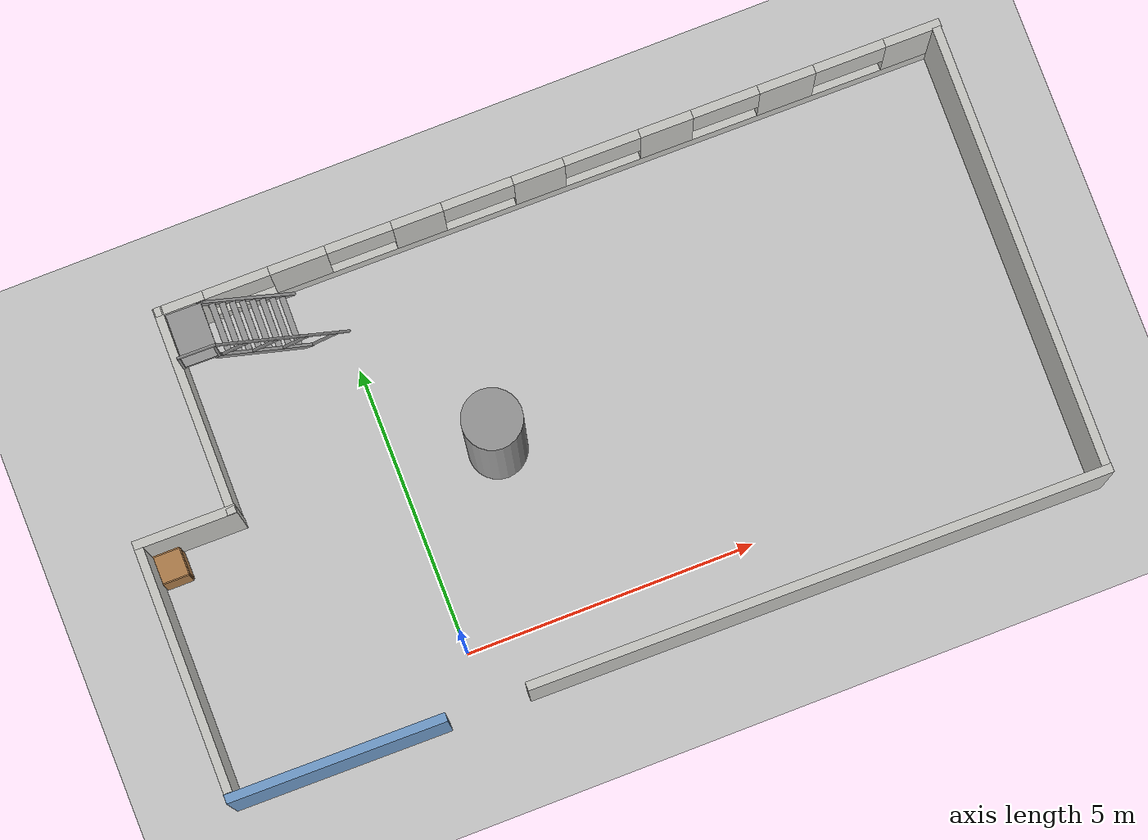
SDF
<sdf version="1.7">
 <world name="default">
  <model name="ground_plane">
   <static>1</static>
   <link name="link">
    <collision name="collision">
     <geometry><plane><normal>0 0 1</normal><size>100 100</size></plane></geometry>
     <surface><friction><ode><mu>100</mu><mu2>50</mu2></ode></friction></surface>
    </collision>
    <visual name="visual">
     <cast_shadows>0</cast_shadows>
     <geometry><plane><normal>0 0 1</normal><size>100 100</size></plane></geometry>
     <material>
      <script><uri>file://media/materials/scripts/gazebo.material</uri><name>Gazebo/Grey</name></script>
     </material>
    </visual>
   </link>
  </model>
  <model name="leju_exhibition">
   <link name="Wall_11">
    <pose>-5.68 -2.4925 0 0 -0 0</pose>
    <visual name="Wall_11_Visual">
     <pose>0 0 1.25 0 -0 0</pose>
     <geometry><box><size>3.75 0.15 2.5</size></box></geometry>
     <material>
      <script><uri>file://media/materials/scripts/gazebo.material</uri><name>Gazebo/Grey</name></script>
      <ambient>0.447059 0.623529 0.811765 1</ambient>
      <shader type="pixel"/>
     </material>
     <meta><layer>0</layer></meta>
    </visual>
    <collision name="Wall_11_Collision">
     <pose>0 0 1.25 0 -0 0</pose>
     <geometry><box><size>3.75 0.15 2.5</size></box></geometry>
     <surface>
      <friction>
       <ode><mu>1</mu><mu2>1</mu2><fdir1>0 0 0</fdir1><slip1>0</slip1><slip2>0</slip2></ode>
       <torsional>
        <coefficient>1</coefficient>
        <patch_radius>0</patch_radius>
        <surface_radius>0</surface_radius>
        <use_patch_radius>1</use_patch_radius>
        <ode><slip>0</slip></ode>
       </torsional>
      </friction>
      <bounce><restitution_coefficient>0</restitution_coefficient><threshold>1e+06</threshold></bounce>
      <contact>
       <collide_without_contact>0</collide_without_contact>
       <collide_without_contact_bitmask>1</collide_without_contact_bitmask>
       <collide_bitmask>1</collide_bitmask>
       <ode>
        <soft_cfm>0</soft_cfm>
        <soft_erp>0.2</soft_erp>
        <kp>1e+13</kp>
        <kd>1</kd>
        <max_vel>0.01</max_vel>
        <min_depth>0</min_depth>
       </ode>
       <bullet>
        <split_impulse>1</split_impulse>
        <split_impulse_penetration_threshold>-0.01</split_impulse_penetration_threshold>
        <soft_cfm>0</soft_cfm>
        <soft_erp>0.2</soft_erp>
        <kp>1e+13</kp>
        <kd>1</kd>
       </bullet>
      </contact>
     </surface>
    </collision>
   </link>
   <link name="Wall_13">
    <pose>-7.47239 -0.332597 0 0 -0 1.57079</pose>
    <inertial>
     <inertia><ixx>0</ixx><ixy>0</ixy><ixz>0</ixz><iyy>0</iyy><iyz>0</iyz><izz>0</izz></inertia>
     <mass>0</mass>
    </inertial>
    <visual name="Wall_13_Visual">
     <pose>0 0 1.25 0 -0 0</pose>
     <geometry><box><size>4.15511 0.15 2.5</size></box></geometry>
     <material>
      <script><uri>file://media/materials/scripts/gazebo.material</uri><name>Gazebo/CeilingTiled</name></script>
      <ambient>0.447059 0.623529 0.811765 1</ambient>
      <shader type="pixel"/>
     </material>
     <meta><layer>0</layer></meta>
    </visual>
    <collision name="Wall_13_Collision">
     <pose>0 0 1.25 0 -0 0</pose>
     <geometry><box><size>4.15511 0.15 2.5</size></box></geometry>
     <surface>
      <friction>
       <ode><mu>1</mu><mu2>1</mu2><fdir1>0 0 0</fdir1><slip1>0</slip1><slip2>0</slip2></ode>
       <torsional>
        <coefficient>1</coefficient>
        <patch_radius>0</patch_radius>
        <surface_radius>0</surface_radius>
        <use_patch_radius>1</use_patch_radius>
        <ode><slip>0</slip></ode>
       </torsional>
      </friction>
      <bounce><restitution_coefficient>0</restitution_coefficient><threshold>1e+06</threshold></bounce>
      <contact>
       <collide_without_contact>0</collide_without_contact>
       <collide_without_contact_bitmask>1</collide_without_contact_bitmask>
       <collide_bitmask>1</collide_bitmask>
       <ode>
        <soft_cfm>0</soft_cfm>
        <soft_erp>0.2</soft_erp>
        <kp>1e+13</kp>
        <kd>1</kd>
        <max_vel>0.01</max_vel>
        <min_depth>0</min_depth>
       </ode>
       <bullet>
        <split_impulse>1</split_impulse>
        <split_impulse_penetration_threshold>-0.01</split_impulse_penetration_threshold>
        <soft_cfm>0</soft_cfm>
        <soft_erp>0.2</soft_erp>
        <kp>1e+13</kp>
        <kd>1</kd>
       </bullet>
      </contact>
     </surface>
    </collision>
   </link>
   <link name="Wall_14">
    <pose>-6.67163 1.81563 0 0 -0 0</pose>
    <visual name="Wall_14_Visual">
     <pose>0 0 1.25 0 -0 0</pose>
     <geometry><box><size>1.75 0.15 2.5</size></box></geometry>
     <material>
      <script><uri>file://media/materials/scripts/gazebo.material</uri><name>Gazebo/CeilingTiled</name></script>
      <ambient>0.447059 0.623529 0.811765 1</ambient>
      <shader type="pixel"/>
     </material>
     <meta><layer>0</layer></meta>
    </visual>
    <collision name="Wall_14_Collision">
     <pose>0 0 1.25 0 -0 0</pose>
     <geometry><box><size>1.75 0.15 2.5</size></box></geometry>
     <surface>
      <friction>
       <ode><mu>1</mu><mu2>1</mu2><fdir1>0 0 0</fdir1><slip1>0</slip1><slip2>0</slip2></ode>
       <torsional>
        <coefficient>1</coefficient>
        <patch_radius>0</patch_radius>
        <surface_radius>0</surface_radius>
        <use_patch_radius>1</use_patch_radius>
        <ode><slip>0</slip></ode>
       </torsional>
      </friction>
      <bounce><restitution_coefficient>0</restitution_coefficient><threshold>1e+06</threshold></bounce>
      <contact>
       <collide_without_contact>0</collide_without_contact>
       <collide_without_contact_bitmask>1</collide_without_contact_bitmask>
       <collide_bitmask>1</collide_bitmask>
       <ode>
        <soft_cfm>0</soft_cfm>
        <soft_erp>0.2</soft_erp>
        <kp>1e+13</kp>
        <kd>1</kd>
        <max_vel>0.01</max_vel>
        <min_depth>0</min_depth>
       </ode>
       <bullet>
        <split_impulse>1</split_impulse>
        <split_impulse_penetration_threshold>-0.01</split_impulse_penetration_threshold>
        <soft_cfm>0</soft_cfm>
        <soft_erp>0.2</soft_erp>
        <kp>1e+13</kp>
        <kd>1</kd>
       </bullet>
      </contact>
     </surface>
    </collision>
   </link>
   <link name="Wall_15">
    <pose>-5.8821 3.52008 0 0 -0 1.57079</pose>
    <inertial>
     <inertia><ixx>0</ixx><ixy>0</ixy><ixz>0</ixz><iyy>0</iyy><iyz>0</iyz><izz>0</izz></inertia>
     <mass>0</mass>
    </inertial>
    <visual name="Wall_15_Visual">
     <pose>0 0 1.25 0 -0 0</pose>
     <geometry><box><size>3.54196 0.15 2.5</size></box></geometry>
     <material>
      <script><uri>file://media/materials/scripts/gazebo.material</uri><name>Gazebo/CeilingTiled</name></script>
      <ambient>0.447059 0.623529 0.811765 1</ambient>
      <shader type="pixel"/>
     </material>
     <meta><layer>0</layer></meta>
    </visual>
    <collision name="Wall_15_Collision">
     <pose>0 0 1.25 0 -0 0</pose>
     <geometry><box><size>3.54196 0.15 2.5</size></box></geometry>
     <surface>
      <friction>
       <ode><mu>1</mu><mu2>1</mu2><fdir1>0 0 0</fdir1><slip1>0</slip1><slip2>0</slip2></ode>
       <torsional>
        <coefficient>1</coefficient>
        <patch_radius>0</patch_radius>
        <surface_radius>0</surface_radius>
        <use_patch_radius>1</use_patch_radius>
        <ode><slip>0</slip></ode>
       </torsional>
      </friction>
      <bounce><restitution_coefficient>0</restitution_coefficient><threshold>1e+06</threshold></bounce>
      <contact>
       <collide_without_contact>0</collide_without_contact>
       <collide_without_contact_bitmask>1</collide_without_contact_bitmask>
       <collide_bitmask>1</collide_bitmask>
       <ode>
        <soft_cfm>0</soft_cfm>
        <soft_erp>0.2</soft_erp>
        <kp>1e+13</kp>
        <kd>1</kd>
        <max_vel>0.01</max_vel>
        <min_depth>0</min_depth>
       </ode>
       <bullet>
        <split_impulse>1</split_impulse>
        <split_impulse_penetration_threshold>-0.01</split_impulse_penetration_threshold>
        <soft_cfm>0</soft_cfm>
        <soft_erp>0.2</soft_erp>
        <kp>1e+13</kp>
        <kd>1</kd>
       </bullet>
      </contact>
     </surface>
    </collision>
   </link>
   <link name="Wall_16">
    <pose>0.808087 5.22568 0 0 -0 0</pose>
    <visual name="Wall_16_Visual_0">
     <pose>-6.33395 0 1.25 0 -0 0</pose>
     <geometry><box><size>0.8321 0.15 2.5</size></box></geometry>
     <material>
      <script><uri>file://media/materials/scripts/gazebo.material</uri><name>Gazebo/CeilingTiled</name></script>
      <ambient>0.447059 0.623529 0.811765 1</ambient>
      <shader type="pixel"/>
     </material>
     <meta><layer>0</layer></meta>
    </visual>
    <visual name="Wall_16_Visual_1">
     <pose>0.41605 0 0.25 0 -0 0</pose>
     <geometry><box><size>12.6679 0.15 0.5</size></box></geometry>
     <material>
      <script><uri>file://media/materials/scripts/gazebo.material</uri><name>Gazebo/CeilingTiled</name></script>
      <ambient>0.447059 0.623529 0.811765 1</ambient>
      <shader type="pixel"/>
     </material>
     <meta><layer>0</layer></meta>
    </visual>
    <visual name="Wall_16_Visual_2">
     <pose>-4.31442 0 1.5 0 -0 0</pose>
     <geometry><box><size>0.97215 0.15 2</size></box></geometry>
     <material>
      <script><uri>file://media/materials/scripts/gazebo.material</uri><name>Gazebo/CeilingTiled</name></script>
      <ambient>0.447059 0.623529 0.811765 1</ambient>
      <shader type="pixel"/>
     </material>
     <meta><layer>0</layer></meta>
    </visual>
    <visual name="Wall_16_Visual_3">
     <pose>-2.26455 0 1.5 0 -0 0</pose>
     <geometry><box><size>0.86635 0.15 2</size></box></geometry>
     <material>
      <script><uri>file://media/materials/scripts/gazebo.material</uri><name>Gazebo/CeilingTiled</name></script>
      <ambient>0.447059 0.623529 0.811765 1</ambient>
      <shader type="pixel"/>
     </material>
     <meta><layer>0</layer></meta>
    </visual>
    <visual name="Wall_16_Visual_4">
     <pose>-0.181613 0 1.5 0 -0 0</pose>
     <geometry><box><size>0.879575 0.15 2</size></box></geometry>
     <material>
      <script><uri>file://media/materials/scripts/gazebo.material</uri><name>Gazebo/CeilingTiled</name></script>
      <ambient>0.447059 0.623529 0.811765 1</ambient>
      <shader type="pixel"/>
     </material>
     <meta><layer>0</layer></meta>
    </visual>
    <visual name="Wall_16_Visual_5">
     <pose>2.01374 0 1.5 0 -0 0</pose>
     <geometry><box><size>0.906025 0.15 2</size></box></geometry>
     <material>
      <script><uri>file://media/materials/scripts/gazebo.material</uri><name>Gazebo/CeilingTiled</name></script>
      <ambient>0.447059 0.623529 0.811765 1</ambient>
      <shader type="pixel"/>
     </material>
     <meta><layer>0</layer></meta>
    </visual>
    <visual name="Wall_16_Visual_6">
     <pose>4.09337 0 1.5 0 -0 0</pose>
     <geometry><box><size>0.965538 0.15 2</size></box></geometry>
     <material>
      <script><uri>file://media/materials/scripts/gazebo.material</uri><name>Gazebo/CeilingTiled</name></script>
      <ambient>0.447059 0.623529 0.811765 1</ambient>
      <shader type="pixel"/>
     </material>
     <meta><layer>0</layer></meta>
    </visual>
    <visual name="Wall_16_Visual_7">
     <pose>6.26806 0 1.5 0 -0 0</pose>
     <geometry><box><size>0.963887 0.15 2</size></box></geometry>
     <material>
      <script><uri>file://media/materials/scripts/gazebo.material</uri><name>Gazebo/CeilingTiled</name></script>
      <ambient>0.447059 0.623529 0.811765 1</ambient>
      <shader type="pixel"/>
     </material>
     <meta><layer>0</layer></meta>
    </visual>
    <visual name="Wall_16_Visual_8">
     <pose>-5.3592 0 1.9 0 -0 0</pose>
     <geometry><box><size>1.1174 0.15 1.2</size></box></geometry>
     <material>
      <script><uri>file://media/materials/scripts/gazebo.material</uri><name>Gazebo/CeilingTiled</name></script>
      <ambient>0.447059 0.623529 0.811765 1</ambient>
      <shader type="pixel"/>
     </material>
     <meta><layer>0</layer></meta>
    </visual>
    <visual name="Wall_16_Visual_9">
     <pose>-3.26304 0 1.9 0 -0 0</pose>
     <geometry><box><size>1.13062 0.15 1.2</size></box></geometry>
     <material>
      <script><uri>file://media/materials/scripts/gazebo.material</uri><name>Gazebo/CeilingTiled</name></script>
      <ambient>0.447059 0.623529 0.811765 1</ambient>
      <shader type="pixel"/>
     </material>
     <meta><layer>0</layer></meta>
    </visual>
    <visual name="Wall_16_Visual_10">
     <pose>-1.22639 0 1.9 0 -0 0</pose>
     <geometry><box><size>1.20998 0.15 1.2</size></box></geometry>
     <material>
      <script><uri>file://media/materials/scripts/gazebo.material</uri><name>Gazebo/CeilingTiled</name></script>
      <ambient>0.447059 0.623529 0.811765 1</ambient>
      <shader type="pixel"/>
     </material>
     <meta><layer>0</layer></meta>
    </visual>
    <visual name="Wall_16_Visual_11">
     <pose>0.90945 0 1.9 0 -0 0</pose>
     <geometry><box><size>1.30255 0.15 1.2</size></box></geometry>
     <material>
      <script><uri>file://media/materials/scripts/gazebo.material</uri><name>Gazebo/CeilingTiled</name></script>
      <ambient>0.447059 0.623529 0.811765 1</ambient>
      <shader type="pixel"/>
     </material>
     <meta><layer>0</layer></meta>
    </visual>
    <visual name="Wall_16_Visual_12">
     <pose>3.03868 0 1.9 0 -0 0</pose>
     <geometry><box><size>1.14385 0.15 1.2</size></box></geometry>
     <material>
      <script><uri>file://media/materials/scripts/gazebo.material</uri><name>Gazebo/CeilingTiled</name></script>
      <ambient>0.447059 0.623529 0.811765 1</ambient>
      <shader type="pixel"/>
     </material>
     <meta><layer>0</layer></meta>
    </visual>
    <visual name="Wall_16_Visual_13">
     <pose>5.18112 0 1.9 0 -0 0</pose>
     <geometry><box><size>1.20998 0.15 1.2</size></box></geometry>
     <material>
      <script><uri>file://media/materials/scripts/gazebo.material</uri><name>Gazebo/CeilingTiled</name></script>
      <ambient>0.447059 0.623529 0.811765 1</ambient>
      <shader type="pixel"/>
     </material>
     <meta><layer>0</layer></meta>
    </visual>
    <collision name="Wall_16_Collision_0">
     <pose>-6.33395 0 1.25 0 -0 0</pose>
     <geometry><box><size>0.8321 0.15 2.5</size></box></geometry>
     <surface>
      <friction>
       <ode><mu>1</mu><mu2>1</mu2><fdir1>0 0 0</fdir1><slip1>0</slip1><slip2>0</slip2></ode>
       <torsional>
        <coefficient>1</coefficient>
        <patch_radius>0</patch_radius>
        <surface_radius>0</surface_radius>
        <use_patch_radius>1</use_patch_radius>
        <ode><slip>0</slip></ode>
       </torsional>
      </friction>
      <bounce><restitution_coefficient>0</restitution_coefficient><threshold>1e+06</threshold></bounce>
      <contact>
       <collide_without_contact>0</collide_without_contact>
       <collide_without_contact_bitmask>1</collide_without_contact_bitmask>
       <collide_bitmask>1</collide_bitmask>
       <ode>
        <soft_cfm>0</soft_cfm>
        <soft_erp>0.2</soft_erp>
        <kp>1e+13</kp>
        <kd>1</kd>
        <max_vel>0.01</max_vel>
        <min_depth>0</min_depth>
       </ode>
       <bullet>
        <split_impulse>1</split_impulse>
        <split_impulse_penetration_threshold>-0.01</split_impulse_penetration_threshold>
        <soft_cfm>0</soft_cfm>
        <soft_erp>0.2</soft_erp>
        <kp>1e+13</kp>
        <kd>1</kd>
       </bullet>
      </contact>
     </surface>
    </collision>
    <collision name="Wall_16_Collision_1">
     <pose>0.41605 0 0.25 0 -0 0</pose>
     <geometry><box><size>12.6679 0.15 0.5</size></box></geometry>
     <surface>
      <friction>
       <ode><mu>1</mu><mu2>1</mu2><fdir1>0 0 0</fdir1><slip1>0</slip1><slip2>0</slip2></ode>
       <torsional>
        <coefficient>1</coefficient>
        <patch_radius>0</patch_radius>
        <surface_radius>0</surface_radius>
        <use_patch_radius>1</use_patch_radius>
        <ode><slip>0</slip></ode>
       </torsional>
      </friction>
      <bounce><restitution_coefficient>0</restitution_coefficient><threshold>1e+06</threshold></bounce>
      <contact>
       <collide_without_contact>0</collide_without_contact>
       <collide_without_contact_bitmask>1</collide_without_contact_bitmask>
       <collide_bitmask>1</collide_bitmask>
       <ode>
        <soft_cfm>0</soft_cfm>
        <soft_erp>0.2</soft_erp>
        <kp>1e+13</kp>
        <kd>1</kd>
        <max_vel>0.01</max_vel>
        <min_depth>0</min_depth>
       </ode>
       <bullet>
        <split_impulse>1</split_impulse>
        <split_impulse_penetration_threshold>-0.01</split_impulse_penetration_threshold>
        <soft_cfm>0</soft_cfm>
        <soft_erp>0.2</soft_erp>
        <kp>1e+13</kp>
        <kd>1</kd>
       </bullet>
      </contact>
     </surface>
    </collision>
    <collision name="Wall_16_Collision_2">
     <pose>-4.31442 0 1.5 0 -0 0</pose>
     <geometry><box><size>0.97215 0.15 2</size></box></geometry>
     <surface>
      <friction>
       <ode><mu>1</mu><mu2>1</mu2><fdir1>0 0 0</fdir1><slip1>0</slip1><slip2>0</slip2></ode>
       <torsional>
        <coefficient>1</coefficient>
        <patch_radius>0</patch_radius>
        <surface_radius>0</surface_radius>
        <use_patch_radius>1</use_patch_radius>
        <ode><slip>0</slip></ode>
       </torsional>
      </friction>
      <bounce><restitution_coefficient>0</restitution_coefficient><threshold>1e+06</threshold></bounce>
      <contact>
       <collide_without_contact>0</collide_without_contact>
       <collide_without_contact_bitmask>1</collide_without_contact_bitmask>
       <collide_bitmask>1</collide_bitmask>
       <ode>
        <soft_cfm>0</soft_cfm>
        <soft_erp>0.2</soft_erp>
        <kp>1e+13</kp>
        <kd>1</kd>
        <max_vel>0.01</max_vel>
        <min_depth>0</min_depth>
       </ode>
       <bullet>
        <split_impulse>1</split_impulse>
        <split_impulse_penetration_threshold>-0.01</split_impulse_penetration_threshold>
        <soft_cfm>0</soft_cfm>
        <soft_erp>0.2</soft_erp>
        <kp>1e+13</kp>
        <kd>1</kd>
       </bullet>
      </contact>
     </surface>
    </collision>
    <collision name="Wall_16_Collision_3">
     <pose>-2.26455 0 1.5 0 -0 0</pose>
     <geometry><box><size>0.86635 0.15 2</size></box></geometry>
     <surface>
      <friction>
       <ode><mu>1</mu><mu2>1</mu2><fdir1>0 0 0</fdir1><slip1>0</slip1><slip2>0</slip2></ode>
       <torsional>
        <coefficient>1</coefficient>
        <patch_radius>0</patch_radius>
        <surface_radius>0</surface_radius>
        <use_patch_radius>1</use_patch_radius>
        <ode><slip>0</slip></ode>
       </torsional>
      </friction>
      <bounce><restitution_coefficient>0</restitution_coefficient><threshold>1e+06</threshold></bounce>
      <contact>
       <collide_without_contact>0</collide_without_contact>
       <collide_without_contact_bitmask>1</collide_without_contact_bitmask>
       <collide_bitmask>1</collide_bitmask>
       <ode>
        <soft_cfm>0</soft_cfm>
        <soft_erp>0.2</soft_erp>
        <kp>1e+13</kp>
        <kd>1</kd>
        <max_vel>0.01</max_vel>
        <min_depth>0</min_depth>
       </ode>
       <bullet>
        <split_impulse>1</split_impulse>
        <split_impulse_penetration_threshold>-0.01</split_impulse_penetration_threshold>
        <soft_cfm>0</soft_cfm>
        <soft_erp>0.2</soft_erp>
        <kp>1e+13</kp>
        <kd>1</kd>
       </bullet>
      </contact>
     </surface>
    </collision>
    <collision name="Wall_16_Collision_4">
     <pose>-0.181613 0 1.5 0 -0 0</pose>
     <geometry><box><size>0.879575 0.15 2</size></box></geometry>
     <surface>
      <friction>
       <ode><mu>1</mu><mu2>1</mu2><fdir1>0 0 0</fdir1><slip1>0</slip1><slip2>0</slip2></ode>
       <torsional>
        <coefficient>1</coefficient>
        <patch_radius>0</patch_radius>
        <surface_radius>0</surface_radius>
        <use_patch_radius>1</use_patch_radius>
        <ode><slip>0</slip></ode>
       </torsional>
      </friction>
      <bounce><restitution_coefficient>0</restitution_coefficient><threshold>1e+06</threshold></bounce>
      <contact>
       <collide_without_contact>0</collide_without_contact>
       <collide_without_contact_bitmask>1</collide_without_contact_bitmask>
       <collide_bitmask>1</collide_bitmask>
       <ode>
        <soft_cfm>0</soft_cfm>
        <soft_erp>0.2</soft_erp>
        <kp>1e+13</kp>
        <kd>1</kd>
        <max_vel>0.01</max_vel>
        <min_depth>0</min_depth>
       </ode>
       <bullet>
        <split_impulse>1</split_impulse>
        <split_impulse_penetration_threshold>-0.01</split_impulse_penetration_threshold>
        <soft_cfm>0</soft_cfm>
        <soft_erp>0.2</soft_erp>
        <kp>1e+13</kp>
        <kd>1</kd>
       </bullet>
      </contact>
     </surface>
    </collision>
    <collision name="Wall_16_Collision_5">
     <pose>2.01374 0 1.5 0 -0 0</pose>
     <geometry><box><size>0.906025 0.15 2</size></box></geometry>
     <surface>
      <friction>
       <ode><mu>1</mu><mu2>1</mu2><fdir1>0 0 0</fdir1><slip1>0</slip1><slip2>0</slip2></ode>
       <torsional>
        <coefficient>1</coefficient>
        <patch_radius>0</patch_radius>
        <surface_radius>0</surface_radius>
        <use_patch_radius>1</use_patch_radius>
        <ode><slip>0</slip></ode>
       </torsional>
      </friction>
      <bounce><restitution_coefficient>0</restitution_coefficient><threshold>1e+06</threshold></bounce>
      <contact>
       <collide_without_contact>0</collide_without_contact>
       <collide_without_contact_bitmask>1</collide_without_contact_bitmask>
       <collide_bitmask>1</collide_bitmask>
       <ode>
        <soft_cfm>0</soft_cfm>
        <soft_erp>0.2</soft_erp>
        <kp>1e+13</kp>
        <kd>1</kd>
        <max_vel>0.01</max_vel>
        <min_depth>0</min_depth>
       </ode>
       <bullet>
        <split_impulse>1</split_impulse>
        <split_impulse_penetration_threshold>-0.01</split_impulse_penetration_threshold>
        <soft_cfm>0</soft_cfm>
        <soft_erp>0.2</soft_erp>
        <kp>1e+13</kp>
        <kd>1</kd>
       </bullet>
      </contact>
     </surface>
    </collision>
    <collision name="Wall_16_Collision_6">
     <pose>4.09337 0 1.5 0 -0 0</pose>
     <geometry><box><size>0.965538 0.15 2</size></box></geometry>
     <surface>
      <friction>
       <ode><mu>1</mu><mu2>1</mu2><fdir1>0 0 0</fdir1><slip1>0</slip1><slip2>0</slip2></ode>
       <torsional>
        <coefficient>1</coefficient>
        <patch_radius>0</patch_radius>
        <surface_radius>0</surface_radius>
        <use_patch_radius>1</use_patch_radius>
        <ode><slip>0</slip></ode>
       </torsional>
      </friction>
      <bounce><restitution_coefficient>0</restitution_coefficient><threshold>1e+06</threshold></bounce>
      <contact>
       <collide_without_contact>0</collide_without_contact>
       <collide_without_contact_bitmask>1</collide_without_contact_bitmask>
       <collide_bitmask>1</collide_bitmask>
       <ode>
        <soft_cfm>0</soft_cfm>
        <soft_erp>0.2</soft_erp>
        <kp>1e+13</kp>
        <kd>1</kd>
        <max_vel>0.01</max_vel>
        <min_depth>0</min_depth>
       </ode>
       <bullet>
        <split_impulse>1</split_impulse>
        <split_impulse_penetration_threshold>-0.01</split_impulse_penetration_threshold>
        <soft_cfm>0</soft_cfm>
        <soft_erp>0.2</soft_erp>
        <kp>1e+13</kp>
        <kd>1</kd>
       </bullet>
      </contact>
     </surface>
    </collision>
    <collision name="Wall_16_Collision_7">
     <pose>6.26806 0 1.5 0 -0 0</pose>
     <geometry><box><size>0.963887 0.15 2</size></box></geometry>
     <surface>
      <friction>
       <ode><mu>1</mu><mu2>1</mu2><fdir1>0 0 0</fdir1><slip1>0</slip1><slip2>0</slip2></ode>
       <torsional>
        <coefficient>1</coefficient>
        <patch_radius>0</patch_radius>
        <surface_radius>0</surface_radius>
        <use_patch_radius>1</use_patch_radius>
        <ode><slip>0</slip></ode>
       </torsional>
      </friction>
      <bounce><restitution_coefficient>0</restitution_coefficient><threshold>1e+06</threshold></bounce>
      <contact>
       <collide_without_contact>0</collide_without_contact>
       <collide_without_contact_bitmask>1</collide_without_contact_bitmask>
       <collide_bitmask>1</collide_bitmask>
       <ode>
        <soft_cfm>0</soft_cfm>
        <soft_erp>0.2</soft_erp>
        <kp>1e+13</kp>
        <kd>1</kd>
        <max_vel>0.01</max_vel>
        <min_depth>0</min_depth>
       </ode>
       <bullet>
        <split_impulse>1</split_impulse>
        <split_impulse_penetration_threshold>-0.01</split_impulse_penetration_threshold>
        <soft_cfm>0</soft_cfm>
        <soft_erp>0.2</soft_erp>
        <kp>1e+13</kp>
        <kd>1</kd>
       </bullet>
      </contact>
     </surface>
    </collision>
    <collision name="Wall_16_Collision_8">
     <pose>-5.3592 0 1.9 0 -0 0</pose>
     <geometry><box><size>1.1174 0.15 1.2</size></box></geometry>
     <surface>
      <friction>
       <ode><mu>1</mu><mu2>1</mu2><fdir1>0 0 0</fdir1><slip1>0</slip1><slip2>0</slip2></ode>
       <torsional>
        <coefficient>1</coefficient>
        <patch_radius>0</patch_radius>
        <surface_radius>0</surface_radius>
        <use_patch_radius>1</use_patch_radius>
        <ode><slip>0</slip></ode>
       </torsional>
      </friction>
      <bounce><restitution_coefficient>0</restitution_coefficient><threshold>1e+06</threshold></bounce>
      <contact>
       <collide_without_contact>0</collide_without_contact>
       <collide_without_contact_bitmask>1</collide_without_contact_bitmask>
       <collide_bitmask>1</collide_bitmask>
       <ode>
        <soft_cfm>0</soft_cfm>
        <soft_erp>0.2</soft_erp>
        <kp>1e+13</kp>
        <kd>1</kd>
        <max_vel>0.01</max_vel>
        <min_depth>0</min_depth>
       </ode>
       <bullet>
        <split_impulse>1</split_impulse>
        <split_impulse_penetration_threshold>-0.01</split_impulse_penetration_threshold>
        <soft_cfm>0</soft_cfm>
        <soft_erp>0.2</soft_erp>
        <kp>1e+13</kp>
        <kd>1</kd>
       </bullet>
      </contact>
     </surface>
    </collision>
    <collision name="Wall_16_Collision_9">
     <pose>-3.26304 0 1.9 0 -0 0</pose>
     <geometry><box><size>1.13062 0.15 1.2</size></box></geometry>
     <surface>
      <friction>
       <ode><mu>1</mu><mu2>1</mu2><fdir1>0 0 0</fdir1><slip1>0</slip1><slip2>0</slip2></ode>
       <torsional>
        <coefficient>1</coefficient>
        <patch_radius>0</patch_radius>
        <surface_radius>0</surface_radius>
        <use_patch_radius>1</use_patch_radius>
        <ode><slip>0</slip></ode>
       </torsional>
      </friction>
      <bounce><restitution_coefficient>0</restitution_coefficient><threshold>1e+06</threshold></bounce>
      <contact>
       <collide_without_contact>0</collide_without_contact>
       <collide_without_contact_bitmask>1</collide_without_contact_bitmask>
       <collide_bitmask>1</collide_bitmask>
       <ode>
        <soft_cfm>0</soft_cfm>
        <soft_erp>0.2</soft_erp>
        <kp>1e+13</kp>
        <kd>1</kd>
        <max_vel>0.01</max_vel>
        <min_depth>0</min_depth>
       </ode>
       <bullet>
        <split_impulse>1</split_impulse>
        <split_impulse_penetration_threshold>-0.01</split_impulse_penetration_threshold>
        <soft_cfm>0</soft_cfm>
        <soft_erp>0.2</soft_erp>
        <kp>1e+13</kp>
        <kd>1</kd>
       </bullet>
      </contact>
     </surface>
    </collision>
    <collision name="Wall_16_Collision_10">
     <pose>-1.22639 0 1.9 0 -0 0</pose>
     <geometry><box><size>1.20998 0.15 1.2</size></box></geometry>
     <surface>
      <friction>
       <ode><mu>1</mu><mu2>1</mu2><fdir1>0 0 0</fdir1><slip1>0</slip1><slip2>0</slip2></ode>
       <torsional>
        <coefficient>1</coefficient>
        <patch_radius>0</patch_radius>
        <surface_radius>0</surface_radius>
        <use_patch_radius>1</use_patch_radius>
        <ode><slip>0</slip></ode>
       </torsional>
      </friction>
      <bounce><restitution_coefficient>0</restitution_coefficient><threshold>1e+06</threshold></bounce>
      <contact>
       <collide_without_contact>0</collide_without_contact>
       <collide_without_contact_bitmask>1</collide_without_contact_bitmask>
       <collide_bitmask>1</collide_bitmask>
       <ode>
        <soft_cfm>0</soft_cfm>
        <soft_erp>0.2</soft_erp>
        <kp>1e+13</kp>
        <kd>1</kd>
        <max_vel>0.01</max_vel>
        <min_depth>0</min_depth>
       </ode>
       <bullet>
        <split_impulse>1</split_impulse>
        <split_impulse_penetration_threshold>-0.01</split_impulse_penetration_threshold>
        <soft_cfm>0</soft_cfm>
        <soft_erp>0.2</soft_erp>
        <kp>1e+13</kp>
        <kd>1</kd>
       </bullet>
      </contact>
     </surface>
    </collision>
    <collision name="Wall_16_Collision_11">
     <pose>0.90945 0 1.9 0 -0 0</pose>
     <geometry><box><size>1.30255 0.15 1.2</size></box></geometry>
     <surface>
      <friction>
       <ode><mu>1</mu><mu2>1</mu2><fdir1>0 0 0</fdir1><slip1>0</slip1><slip2>0</slip2></ode>
       <torsional>
        <coefficient>1</coefficient>
        <patch_radius>0</patch_radius>
        <surface_radius>0</surface_radius>
        <use_patch_radius>1</use_patch_radius>
        <ode><slip>0</slip></ode>
       </torsional>
      </friction>
      <bounce><restitution_coefficient>0</restitution_coefficient><threshold>1e+06</threshold></bounce>
      <contact>
       <collide_without_contact>0</collide_without_contact>
       <collide_without_contact_bitmask>1</collide_without_contact_bitmask>
       <collide_bitmask>1</collide_bitmask>
       <ode>
        <soft_cfm>0</soft_cfm>
        <soft_erp>0.2</soft_erp>
        <kp>1e+13</kp>
        <kd>1</kd>
        <max_vel>0.01</max_vel>
        <min_depth>0</min_depth>
       </ode>
       <bullet>
        <split_impulse>1</split_impulse>
        <split_impulse_penetration_threshold>-0.01</split_impulse_penetration_threshold>
        <soft_cfm>0</soft_cfm>
        <soft_erp>0.2</soft_erp>
        <kp>1e+13</kp>
        <kd>1</kd>
       </bullet>
      </contact>
     </surface>
    </collision>
    <collision name="Wall_16_Collision_12">
     <pose>3.03868 0 1.9 0 -0 0</pose>
     <geometry><box><size>1.14385 0.15 1.2</size></box></geometry>
     <surface>
      <friction>
       <ode><mu>1</mu><mu2>1</mu2><fdir1>0 0 0</fdir1><slip1>0</slip1><slip2>0</slip2></ode>
       <torsional>
        <coefficient>1</coefficient>
        <patch_radius>0</patch_radius>
        <surface_radius>0</surface_radius>
        <use_patch_radius>1</use_patch_radius>
        <ode><slip>0</slip></ode>
       </torsional>
      </friction>
      <bounce><restitution_coefficient>0</restitution_coefficient><threshold>1e+06</threshold></bounce>
      <contact>
       <collide_without_contact>0</collide_without_contact>
       <collide_without_contact_bitmask>1</collide_without_contact_bitmask>
       <collide_bitmask>1</collide_bitmask>
       <ode>
        <soft_cfm>0</soft_cfm>
        <soft_erp>0.2</soft_erp>
        <kp>1e+13</kp>
        <kd>1</kd>
        <max_vel>0.01</max_vel>
        <min_depth>0</min_depth>
       </ode>
       <bullet>
        <split_impulse>1</split_impulse>
        <split_impulse_penetration_threshold>-0.01</split_impulse_penetration_threshold>
        <soft_cfm>0</soft_cfm>
        <soft_erp>0.2</soft_erp>
        <kp>1e+13</kp>
        <kd>1</kd>
       </bullet>
      </contact>
     </surface>
    </collision>
    <collision name="Wall_16_Collision_13">
     <pose>5.18112 0 1.9 0 -0 0</pose>
     <geometry><box><size>1.20998 0.15 1.2</size></box></geometry>
     <surface>
      <friction>
       <ode><mu>1</mu><mu2>1</mu2><fdir1>0 0 0</fdir1><slip1>0</slip1><slip2>0</slip2></ode>
       <torsional>
        <coefficient>1</coefficient>
        <patch_radius>0</patch_radius>
        <surface_radius>0</surface_radius>
        <use_patch_radius>1</use_patch_radius>
        <ode><slip>0</slip></ode>
       </torsional>
      </friction>
      <bounce><restitution_coefficient>0</restitution_coefficient><threshold>1e+06</threshold></bounce>
      <contact>
       <collide_without_contact>0</collide_without_contact>
       <collide_without_contact_bitmask>1</collide_without_contact_bitmask>
       <collide_bitmask>1</collide_bitmask>
       <ode>
        <soft_cfm>0</soft_cfm>
        <soft_erp>0.2</soft_erp>
        <kp>1e+13</kp>
        <kd>1</kd>
        <max_vel>0.01</max_vel>
        <min_depth>0</min_depth>
       </ode>
       <bullet>
        <split_impulse>1</split_impulse>
        <split_impulse_penetration_threshold>-0.01</split_impulse_penetration_threshold>
        <soft_cfm>0</soft_cfm>
        <soft_erp>0.2</soft_erp>
        <kp>1e+13</kp>
        <kd>1</kd>
       </bullet>
      </contact>
     </surface>
    </collision>
   </link>
   <link name="Wall_17">
    <pose>7.47238 1.38023 0 0 0 -1.5708</pose>
    <inertial>
     <inertia><ixx>0</ixx><ixy>0</ixy><ixz>0</ixz><iyy>0</iyy><iyz>0</iyz><izz>0</izz></inertia>
     <mass>0</mass>
    </inertial>
    <visual name="Wall_17_Visual">
     <pose>0 0 1.25 0 -0 0</pose>
     <geometry><box><size>7.59323 0.15 2.5</size></box></geometry>
     <material>
      <script><uri>file://media/materials/scripts/gazebo.material</uri><name>Gazebo/CeilingTiled</name></script>
      <ambient>0.447059 0.623529 0.811765 1</ambient>
      <shader type="pixel"/>
     </material>
     <meta><layer>0</layer></meta>
    </visual>
    <collision name="Wall_17_Collision">
     <pose>0 0 1.25 0 -0 0</pose>
     <geometry><box><size>7.59323 0.15 2.5</size></box></geometry>
     <surface>
      <friction>
       <ode><mu>1</mu><mu2>1</mu2><fdir1>0 0 0</fdir1><slip1>0</slip1><slip2>0</slip2></ode>
       <torsional>
        <coefficient>1</coefficient>
        <patch_radius>0</patch_radius>
        <surface_radius>0</surface_radius>
        <use_patch_radius>1</use_patch_radius>
        <ode><slip>0</slip></ode>
       </torsional>
      </friction>
      <bounce><restitution_coefficient>0</restitution_coefficient><threshold>1e+06</threshold></bounce>
      <contact>
       <collide_without_contact>0</collide_without_contact>
       <collide_without_contact_bitmask>1</collide_without_contact_bitmask>
       <collide_bitmask>1</collide_bitmask>
       <ode>
        <soft_cfm>0</soft_cfm>
        <soft_erp>0.2</soft_erp>
        <kp>1e+13</kp>
        <kd>1</kd>
        <max_vel>0.01</max_vel>
        <min_depth>0</min_depth>
       </ode>
       <bullet>
        <split_impulse>1</split_impulse>
        <split_impulse_penetration_threshold>-0.01</split_impulse_penetration_threshold>
        <soft_cfm>0</soft_cfm>
        <soft_erp>0.2</soft_erp>
        <kp>1e+13</kp>
        <kd>1</kd>
       </bullet>
      </contact>
     </surface>
    </collision>
   </link>
   <link name="Wall_18">
    <pose>2.555 -2.4925 0 0 -0 3.14159</pose>
    <visual name="Wall_18_Visual">
     <pose>0 0 1.25 0 -0 0</pose>
     <geometry><box><size>10 0.15 2.5</size></box></geometry>
     <material>
      <script><uri>file://media/materials/scripts/gazebo.material</uri><name>Gazebo/CeilingTiled</name></script>
      <ambient>0.447059 0.623529 0.811765 1</ambient>
      <shader type="pixel"/>
     </material>
     <meta><layer>0</layer></meta>
    </visual>
    <collision name="Wall_18_Collision">
     <pose>0 0 1.25 0 -0 0</pose>
     <geometry><box><size>10 0.15 2.5</size></box></geometry>
     <surface>
      <friction>
       <ode><mu>1</mu><mu2>1</mu2><fdir1>0 0 0</fdir1><slip1>0</slip1><slip2>0</slip2></ode>
       <torsional>
        <coefficient>1</coefficient>
        <patch_radius>0</patch_radius>
        <surface_radius>0</surface_radius>
        <use_patch_radius>1</use_patch_radius>
        <ode><slip>0</slip></ode>
       </torsional>
      </friction>
      <bounce><restitution_coefficient>0</restitution_coefficient><threshold>1e+06</threshold></bounce>
      <contact>
       <collide_without_contact>0</collide_without_contact>
       <collide_without_contact_bitmask>1</collide_without_contact_bitmask>
       <collide_bitmask>1</collide_bitmask>
       <ode>
        <soft_cfm>0</soft_cfm>
        <soft_erp>0.2</soft_erp>
        <kp>1e+13</kp>
        <kd>1</kd>
        <max_vel>0.01</max_vel>
        <min_depth>0</min_depth>
       </ode>
       <bullet>
        <split_impulse>1</split_impulse>
        <split_impulse_penetration_threshold>-0.01</split_impulse_penetration_threshold>
        <soft_cfm>0</soft_cfm>
        <soft_erp>0.2</soft_erp>
        <kp>1e+13</kp>
        <kd>1</kd>
       </bullet>
      </contact>
     </surface>
    </collision>
   </link>
   <static>1</static>
   <pose>3.14518 1.44437 -0.00345 0 0 -0.008372</pose>
  </model>
  <model name="cabinet">
   <static>1</static>
   <link name="cabinet_bottom_plate">
    <inertial>
     <pose>0 0 -1 0 -0 0</pose>
     <inertia><ixx>2.05</ixx><ixy>0</ixy><ixz>0</ixz><iyy>2.05</iyy><iyz>0</iyz><izz>2.05</izz></inertia>
     <mass>25</mass>
    </inertial>
    <collision name="cabinet_bottom_plate_geom">
     <pose>0 0 0.01 0 -0 0</pose>
     <geometry><box><size>0.45 0.45 0.02</size></box></geometry>
    </collision>
    <visual name="cabinet_bottom_plate_geom_visual">
     <pose>0 0 0.01 0 -0 0</pose>
     <geometry><box><size>0.45 0.45 0.02</size></box></geometry>
     <material>
      <script><uri>file://media/materials/scripts/gazebo.material</uri><name>Gazebo/Wood</name></script>
     </material>
    </visual>
    <collision name="cabinet_bottom_plate_geom_cabinet_back_plate">
     <pose>0.235 0 0.51 0 -0 0</pose>
     <geometry><box><size>0.02 0.45 1.02</size></box></geometry>
    </collision>
    <visual name="cabinet_bottom_plate_geom_cabinet_back_plate_visual">
     <pose>0.235 0 0.51 0 -0 0</pose>
     <geometry><box><size>0.02 0.45 1.02</size></box></geometry>
     <material>
      <script><uri>file://media/materials/scripts/gazebo.material</uri><name>Gazebo/Wood</name></script>
     </material>
    </visual>
    <collision name="cabinet_bottom_plate_geom_cabinet_left_plate">
     <pose>0 0.235 0.51 0 -0 0</pose>
     <geometry><box><size>0.45 0.02 1.02</size></box></geometry>
    </collision>
    <visual name="cabinet_bottom_plate_geom_cabinet_left_plate_visual">
     <pose>0 0.235 0.51 0 -0 0</pose>
     <geometry><box><size>0.45 0.02 1.02</size></box></geometry>
     <material>
      <script><uri>file://media/materials/scripts/gazebo.material</uri><name>Gazebo/Wood</name></script>
     </material>
    </visual>
    <collision name="cabinet_bottom_plate_geom_cabinet_middle_plate">
     <pose>0 0 0.51 0 -0 0</pose>
     <geometry><box><size>0.45 0.45 0.02</size></box></geometry>
    </collision>
    <visual name="cabinet_bottom_plate_geom_cabinet_middle_plate_visual">
     <pose>0 0 0.51 0 -0 0</pose>
     <geometry><box><size>0.45 0.45 0.02</size></box></geometry>
     <material>
      <script><uri>file://media/materials/scripts/gazebo.material</uri><name>Gazebo/Wood</name></script>
     </material>
    </visual>
    <collision name="cabinet_bottom_plate_geom_cabinet_right_plate">
     <pose>0 -0.235 0.51 0 -0 0</pose>
     <geometry><box><size>0.45 0.02 1.02</size></box></geometry>
    </collision>
    <visual name="cabinet_bottom_plate_geom_cabinet_right_plate_visual">
     <pose>0 -0.235 0.51 0 -0 0</pose>
     <geometry><box><size>0.45 0.02 1.02</size></box></geometry>
     <material>
      <script><uri>file://media/materials/scripts/gazebo.material</uri><name>Gazebo/Wood</name></script>
     </material>
    </visual>
    <collision name="cabinet_bottom_plate_geom_cabinet_top_plate">
     <pose>0 0 1.01 0 -0 0</pose>
     <geometry><box><size>0.45 0.45 0.02</size></box></geometry>
    </collision>
    <visual name="cabinet_bottom_plate_geom_cabinet_top_plate_visual">
     <pose>0 0 1.01 0 -0 0</pose>
     <geometry><box><size>0.45 0.45 0.02</size></box></geometry>
     <material>
      <script><uri>file://media/materials/scripts/gazebo.material</uri><name>Gazebo/Wood</name></script>
     </material>
    </visual>
   </link>
   <pose>-3.99396 2.98248 0 0 -0 0</pose>
  </model>
  <model name="unit_cylinder_clone_clone">
   <pose>1.65852 2.97493 2.10043 0 -0 -0.000642</pose>
   <link name="link">
    <inertial>
     <mass>1</mass>
     <inertia><ixx>0.145833</ixx><ixy>0</ixy><ixz>0</ixz><iyy>0.145833</iyy><iyz>0</iyz><izz>0.125</izz></inertia>
    </inertial>
    <collision name="collision">
     <geometry><cylinder><radius>0.5</radius><length>4.20087</length></cylinder></geometry>
    </collision>
    <visual name="visual">
     <geometry><cylinder><radius>0.5</radius><length>4.20087</length></cylinder></geometry>
     <material>
      <script><name>Gazebo/Grey</name><uri>file://media/materials/scripts/gazebo.material</uri></script>
     </material>
    </visual>
   </link>
  </model>
  <model name="ladder_60deg_1rails">
   <static>1</static>
   <link name="step0">
    <pose>0 0.15396 0.266667 0 -0 0</pose>
    <inertial>
     <mass>9.75482</mass>
     <inertia>
      <ixx>0.00957124</ixx>
      <iyy>0.65963</iyy>
      <izz>0.666842</izz>
      <ixy>0</ixy>
      <ixz>0</ixz>
      <iyz>0</iyz>
     </inertia>
    </inertial>
    <collision name="collision"><geometry><box><size>0.9 0.1016 0.0381</size></box></geometry></collision>
    <visual name="visual">
     <geometry><box><size>0.9 0.1016 0.0381</size></box></geometry>
     <material>
      <script><uri>file://media/materials/scripts/gazebo.material</uri><name>Gazebo/Grey</name></script>
     </material>
    </visual>
   </link>
   <link name="step1">
    <pose>0 0.30792 0.533333 0 -0 0</pose>
    <inertial>
     <mass>9.75482</mass>
     <inertia>
      <ixx>0.00957124</ixx>
      <iyy>0.65963</iyy>
      <izz>0.666842</izz>
      <ixy>0</ixy>
      <ixz>0</ixz>
      <iyz>0</iyz>
     </inertia>
    </inertial>
    <collision name="collision"><geometry><box><size>0.9 0.1016 0.0381</size></box></geometry></collision>
    <visual name="visual">
     <geometry><box><size>0.9 0.1016 0.0381</size></box></geometry>
     <material>
      <script><uri>file://media/materials/scripts/gazebo.material</uri><name>Gazebo/Grey</name></script>
     </material>
    </visual>
   </link>
   <link name="step2">
    <pose>0 0.46188 0.8 0 -0 0</pose>
    <inertial>
     <mass>9.75482</mass>
     <inertia>
      <ixx>0.00957124</ixx>
      <iyy>0.65963</iyy>
      <izz>0.666842</izz>
      <ixy>0</ixy>
      <ixz>0</ixz>
      <iyz>0</iyz>
     </inertia>
    </inertial>
    <collision name="collision"><geometry><box><size>0.9 0.1016 0.0381</size></box></geometry></collision>
    <visual name="visual">
     <geometry><box><size>0.9 0.1016 0.0381</size></box></geometry>
     <material>
      <script><uri>file://media/materials/scripts/gazebo.material</uri><name>Gazebo/Grey</name></script>
     </material>
    </visual>
   </link>
   <link name="step3">
    <pose>0 0.61584 1.06667 0 -0 0</pose>
    <inertial>
     <mass>9.75482</mass>
     <inertia>
      <ixx>0.00957124</ixx>
      <iyy>0.65963</iyy>
      <izz>0.666842</izz>
      <ixy>0</ixy>
      <ixz>0</ixz>
      <iyz>0</iyz>
     </inertia>
    </inertial>
    <collision name="collision"><geometry><box><size>0.9 0.1016 0.0381</size></box></geometry></collision>
    <visual name="visual">
     <geometry><box><size>0.9 0.1016 0.0381</size></box></geometry>
     <material>
      <script><uri>file://media/materials/scripts/gazebo.material</uri><name>Gazebo/Grey</name></script>
     </material>
    </visual>
   </link>
   <link name="step4">
    <pose>0 0.7698 1.33333 0 -0 0</pose>
    <inertial>
     <mass>9.75482</mass>
     <inertia>
      <ixx>0.00957124</ixx>
      <iyy>0.65963</iyy>
      <izz>0.666842</izz>
      <ixy>0</ixy>
      <ixz>0</ixz>
      <iyz>0</iyz>
     </inertia>
    </inertial>
    <collision name="collision"><geometry><box><size>0.9 0.1016 0.0381</size></box></geometry></collision>
    <visual name="visual">
     <geometry><box><size>0.9 0.1016 0.0381</size></box></geometry>
     <material>
      <script><uri>file://media/materials/scripts/gazebo.material</uri><name>Gazebo/Grey</name></script>
     </material>
    </visual>
   </link>
   <link name="step5">
    <pose>0 0.92376 1.6 0 -0 0</pose>
    <inertial>
     <mass>9.75482</mass>
     <inertia>
      <ixx>0.00957124</ixx>
      <iyy>0.65963</iyy>
      <izz>0.666842</izz>
      <ixy>0</ixy>
      <ixz>0</ixz>
      <iyz>0</iyz>
     </inertia>
    </inertial>
    <collision name="collision"><geometry><box><size>0.9 0.1016 0.0381</size></box></geometry></collision>
    <visual name="visual">
     <geometry><box><size>0.9 0.1016 0.0381</size></box></geometry>
     <material>
      <script><uri>file://media/materials/scripts/gazebo.material</uri><name>Gazebo/Grey</name></script>
     </material>
    </visual>
   </link>
   <link name="step6">
    <pose>0 1.07772 1.86667 0 -0 0</pose>
    <inertial>
     <mass>9.75482</mass>
     <inertia>
      <ixx>0.00957124</ixx>
      <iyy>0.65963</iyy>
      <izz>0.666842</izz>
      <ixy>0</ixy>
      <ixz>0</ixz>
      <iyz>0</iyz>
     </inertia>
    </inertial>
    <collision name="collision"><geometry><box><size>0.9 0.1016 0.0381</size></box></geometry></collision>
    <visual name="visual">
     <geometry><box><size>0.9 0.1016 0.0381</size></box></geometry>
     <material>
      <script><uri>file://media/materials/scripts/gazebo.material</uri><name>Gazebo/Grey</name></script>
     </material>
    </visual>
   </link>
   <link name="step7">
    <pose>0 1.23168 2.13333 0 -0 0</pose>
    <inertial>
     <mass>9.75482</mass>
     <inertia>
      <ixx>0.00957124</ixx>
      <iyy>0.65963</iyy>
      <izz>0.666842</izz>
      <ixy>0</ixy>
      <ixz>0</ixz>
      <iyz>0</iyz>
     </inertia>
    </inertial>
    <collision name="collision"><geometry><box><size>0.9 0.1016 0.0381</size></box></geometry></collision>
    <visual name="visual">
     <geometry><box><size>0.9 0.1016 0.0381</size></box></geometry>
     <material>
      <script><uri>file://media/materials/scripts/gazebo.material</uri><name>Gazebo/Grey</name></script>
     </material>
    </visual>
   </link>
   <link name="landing">
    <pose>0 1.68564 2.4 0 -0 0</pose>
    <inertial>
     <mass>57.6072</mass>
     <inertia><ixx>1.73518</ixx><iyy>3.89545</iyy><izz>5.6167</izz><ixy>0</ixy><ixz>0</ixz><iyz>0</iyz></inertia>
    </inertial>
    <collision name="collision"><geometry><box><size>0.9 0.6 0.1016</size></box></geometry></collision>
    <visual name="visual">
     <geometry><box><size>0.9 0.6 0.1016</size></box></geometry>
     <material>
      <script><uri>file://media/materials/scripts/gazebo.material</uri><name>Gazebo/Grey</name></script>
     </material>
    </visual>
   </link>
   <link name="left_side_wall">
    <pose>-0.45 0.69282 1.2 1.0472 -0 0</pose>
    <collision name="collision"><geometry><box><size>0.0508 2.85128 0.13</size></box></geometry></collision>
    <visual name="visual">
     <geometry><box><size>0.0508 2.85128 0.13</size></box></geometry>
     <material>
      <script><uri>file://media/materials/scripts/gazebo.material</uri><name>Gazebo/Grey</name></script>
     </material>
    </visual>
   </link>
   <link name="right_side_wall">
    <pose>0.45 0.69282 1.2 1.0472 -0 0</pose>
    <collision name="collision"><geometry><box><size>0.0508 2.85128 0.13</size></box></geometry></collision>
    <visual name="visual">
     <geometry><box><size>0.0508 2.85128 0.13</size></box></geometry>
     <material>
      <script><uri>file://media/materials/scripts/gazebo.material</uri><name>Gazebo/Grey</name></script>
     </material>
    </visual>
   </link>
   <link name="left_railing_long">
    <pose>-0.45 0.34282 1.80622 -0.523599 0 0</pose>
    <collision name="collision">
     <geometry><cylinder><radius>0.02413</radius><length>4.17128</length></cylinder></geometry>
    </collision>
    <visual name="visual">
     <geometry><cylinder><radius>0.02413</radius><length>4.17128</length></cylinder></geometry>
     <material>
      <script><uri>file://media/materials/scripts/gazebo.material</uri><name>Gazebo/Grey</name></script>
     </material>
    </visual>
   </link>
   <link name="left_railing_upright0">
    <pose>-0.45 -0.274963 0.15875 1.0472 -0 0</pose>
    <collision name="collision">
     <geometry><cylinder><radius>0.02413</radius><length>0.541218</length></cylinder></geometry>
    </collision>
    <visual name="visual">
     <geometry><cylinder><radius>0.02413</radius><length>0.541218</length></cylinder></geometry>
     <material>
      <script><uri>file://media/materials/scripts/gazebo.material</uri><name>Gazebo/Grey</name></script>
     </material>
    </visual>
   </link>
   <link name="left_railing_upright1">
    <pose>-0.45 0.186917 0.95875 1.0472 -0 0</pose>
    <collision name="collision">
     <geometry><cylinder><radius>0.02413</radius><length>0.541218</length></cylinder></geometry>
    </collision>
    <visual name="visual">
     <geometry><cylinder><radius>0.02413</radius><length>0.541218</length></cylinder></geometry>
     <material>
      <script><uri>file://media/materials/scripts/gazebo.material</uri><name>Gazebo/Grey</name></script>
     </material>
    </visual>
   </link>
   <link name="left_railing_upright2">
    <pose>-0.45 0.648797 1.75875 1.0472 -0 0</pose>
    <collision name="collision">
     <geometry><cylinder><radius>0.02413</radius><length>0.541218</length></cylinder></geometry>
    </collision>
    <visual name="visual">
     <geometry><cylinder><radius>0.02413</radius><length>0.541218</length></cylinder></geometry>
     <material>
      <script><uri>file://media/materials/scripts/gazebo.material</uri><name>Gazebo/Grey</name></script>
     </material>
    </visual>
   </link>
   <link name="left_railing_upright3">
    <pose>-0.45 1.11068 2.55875 1.0472 -0 0</pose>
    <collision name="collision">
     <geometry><cylinder><radius>0.02413</radius><length>0.541218</length></cylinder></geometry>
    </collision>
    <visual name="visual">
     <geometry><cylinder><radius>0.02413</radius><length>0.541218</length></cylinder></geometry>
     <material>
      <script><uri>file://media/materials/scripts/gazebo.material</uri><name>Gazebo/Grey</name></script>
     </material>
    </visual>
   </link>
   <link name="left_railing_landing_top">
    <pose>-0.45 1.68564 3.61244 1.5708 -0 0</pose>
    <collision name="collision">
     <geometry><cylinder><radius>0.02413</radius><length>0.64826</length></cylinder></geometry>
    </collision>
    <visual name="visual">
     <geometry><cylinder><radius>0.02413</radius><length>0.64826</length></cylinder></geometry>
     <material>
      <script><uri>file://media/materials/scripts/gazebo.material</uri><name>Gazebo/Grey</name></script>
     </material>
    </visual>
   </link>
   <link name="left_railing_landing_upright_0">
    <pose>-0.45 1.38564 3.00622 0 -0 0</pose>
    <collision name="collision">
     <geometry><cylinder><radius>0.02413</radius><length>1.21244</length></cylinder></geometry>
    </collision>
    <visual name="visual">
     <geometry><cylinder><radius>0.02413</radius><length>1.21244</length></cylinder></geometry>
     <material>
      <script><uri>file://media/materials/scripts/gazebo.material</uri><name>Gazebo/Grey</name></script>
     </material>
    </visual>
   </link>
   <link name="left_railing_landing_upright_1">
    <pose>-0.45 1.98564 3.00622 0 -0 0</pose>
    <collision name="collision">
     <geometry><cylinder><radius>0.02413</radius><length>1.21244</length></cylinder></geometry>
    </collision>
    <visual name="visual">
     <geometry><cylinder><radius>0.02413</radius><length>1.21244</length></cylinder></geometry>
     <material>
      <script><uri>file://media/materials/scripts/gazebo.material</uri><name>Gazebo/Grey</name></script>
     </material>
    </visual>
   </link>
   <pose>-0.622841 6.15057 0 0 -0 1.55651</pose>
  </model>
 </world>
</sdf>
